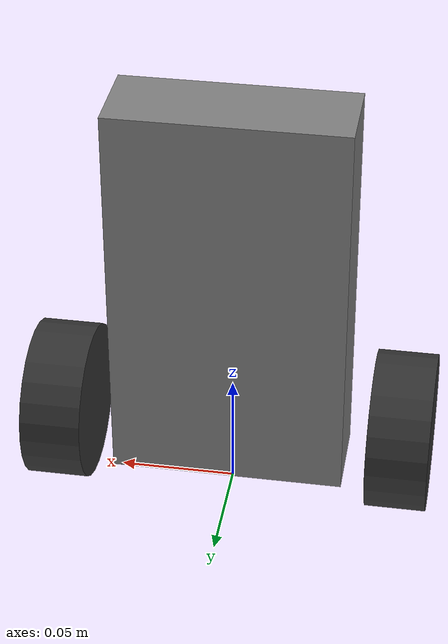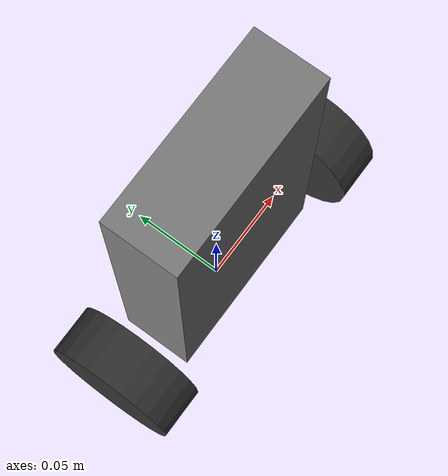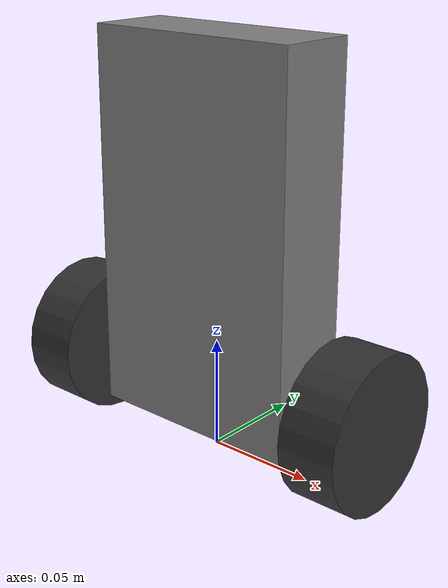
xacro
<robot name="balance_bot" xmlns:xacro="http://www.ros.org/wiki/xacro">
  <xacro:arg name="config_file" default="" />

  <material name="body">  <color rgba="0.5 0.5 0.5 1"/> </material>
  <material name="wheel"> <color rgba="0.2 0.2 0.2 1"/> </material>

  <link name="base_link">
    <visual>
      <geometry><box size="0.1 0.037 0.171"/></geometry>
      <origin rpy="0 0 0" xyz="0 0.0 0.0995"/>
      <material name="body"/>
    </visual>
    <collision>
      <geometry><box size="0.1 0.037 0.171"/></geometry>
      <origin rpy="0 0 0" xyz="0 0.0 0.0995"/>
    </collision>
    <inertial>
      <mass value="0.514"/>
      <!-- ixx/iyy/izz for a uniform solid box: m*(h?+d?)/12 etc.         -->
      <inertia ixx="0.0012568" ixy="0.0" ixz="0.0"
               iyy="0.001311"  iyz="0.0"
               izz="0.000487"/>
      <!-- CoM at geometric center ? matches PyBullet URDF intent          -->
      <origin rpy="0 0 0" xyz="0 0.0 0.0995"/>
    </inertial>
  </link>

  <link name="left_wheel">
    <visual>
      <geometry><cylinder length="0.026" radius="0.034"/></geometry>
      <origin rpy="0 1.5707963 0" xyz="0 0 0"/>
      <material name="wheel"/>
    </visual>
    <collision>
      <geometry><cylinder length="0.026" radius="0.034"/></geometry>
      <origin rpy="0 1.5707963 0" xyz="0 0 0"/>
    </collision>
    <inertial>
      <mass value="0.032"/>
      <inertia ixx="1.3E-05" ixy="0.0" ixz="0.0"
               iyy="1.3E-05" iyz="0.0"
               izz="2.3E-05"/>
      <origin rpy="0 0 0" xyz="0 0 0"/>
    </inertial>
  </link>

  <joint name="left_wheel_joint" type="continuous">
    <parent link="base_link"/>
    <child link="left_wheel"/>
    <axis xyz="-1 0 0"/>
    <!-- velocity=100 rad/s is a generous hardware ceiling (not a control  -->
    <!-- limit); MAX_VEL=50 in the controller is the effective cap.         -->
    <limit effort="25.0" velocity="100.0"/>
    <origin rpy="0 0 0" xyz="-0.074 0.0 0.034"/>
  </joint>

  <link name="right_wheel">
    <visual>
      <geometry><cylinder length="0.026" radius="0.034"/></geometry>
      <origin rpy="0 1.5707963 0" xyz="0 0 0"/>
      <material name="wheel"/>
    </visual>
    <collision>
      <geometry><cylinder length="0.026" radius="0.034"/></geometry>
      <origin rpy="0 1.5707963 0" xyz="0 0 0"/>
    </collision>
    <inertial>
      <mass value="0.032"/>
      <inertia ixx="1.3E-05" ixy="0.0" ixz="0.0"
               iyy="1.3E-05" iyz="0.0"
               izz="2.3E-05"/>
      <origin rpy="0 0 0" xyz="0 0 0"/>
    </inertial>
  </link>

  <joint name="right_wheel_joint" type="continuous">
    <parent link="base_link"/>
    <child link="right_wheel"/>
    <axis xyz="1 0 0"/>
    <limit effort="25.0" velocity="100.0"/>
    <origin rpy="0 0 0" xyz="0.074 0.0 0.034"/>
  </joint>

  <gazebo reference="left_wheel">
    <mu1>5.0</mu1>
    <mu2>5.0</mu2>
    <kp>1e6</kp>
    <kd>10.0</kd>
    <minDepth>0.001</minDepth>
  </gazebo>

  <gazebo reference="right_wheel">
    <mu1>5.0</mu1>
    <mu2>5.0</mu2>
    <kp>1e6</kp>
    <kd>10.0</kd>
    <minDepth>0.001</minDepth>
  </gazebo>

  <link name="imu_link">
    <visual>
      <geometry><box size="0.03 0.03 0.03"/></geometry>
      <origin xyz="0 0 0" rpy="0 0 0"/>
    </visual>
    <collision>
      <geometry><box size="0.05 0.05 0.05"/></geometry>
      <origin xyz="0 0 0" rpy="0 0 0"/>
    </collision>
    <inertial>
      <mass value="0.01"/>
      <origin xyz="0 0 0" rpy="0 0 0"/>
      <inertia ixx="0.0001" iyy="0.0001" izz="0.0001"
               ixy="0.0"   ixz="0.0"   iyz="0.0"/>
    </inertial>
  </link>

  <joint name="imu_joint" type="fixed">
    <parent link="base_link"/>
    <child link="imu_link"/>
    <origin xyz="0 0 0.034" rpy="0 0 0"/>
  </joint>

  <gazebo reference="imu_link">
    <sensor name="imu_sensor" type="imu">
      <always_on>true</always_on>
      <update_rate>200</update_rate>  <!-- raised from 100 -->
      <visualize>true</visualize>
      <pose>0 0 0 0 0 0</pose>
      <imu>
        <angular_velocity>
          <x><noise type="gaussian"><mean>0.0</mean><stddev>0.0002</stddev></noise></x>
          <y><noise type="gaussian"><mean>0.0</mean><stddev>0.0002</stddev></noise></y>
          <z><noise type="gaussian"><mean>0.0</mean><stddev>0.0002</stddev></noise></z>
        </angular_velocity>
        <linear_acceleration>
          <x><noise type="gaussian"><mean>0.0</mean><stddev>0.017</stddev></noise></x>
          <y><noise type="gaussian"><mean>0.0</mean><stddev>0.017</stddev></noise></y>
          <z><noise type="gaussian"><mean>0.0</mean><stddev>0.017</stddev></noise></z>
        </linear_acceleration>
      </imu>
      <plugin name="imu_plugin" filename="libgazebo_ros_imu_sensor.so">
        <bodyName>imu_link</bodyName>
        <updateRateHZ>200.0</updateRateHZ>  <!-- raised from 100 -->
        <gaussianNoise>0.001</gaussianNoise>
        <xyzOffset>0 0 0</xyzOffset>
        <rpyOffset>0 0 0</rpyOffset>
        <frameName>imu_link</frameName>
        <initialOrientationAsReference>false</initialOrientationAsReference>
        <topicName>/imu_plugin/out</topicName>
      </plugin>
    </sensor>
  </gazebo>

  <gazebo>
    <plugin name="gazebo_ros2_control" filename="libgazebo_ros2_control.so">
      <robot_param>robot_description</robot_param>
      <robot_param_node>robot_state_publisher</robot_param_node>
      <parameters>$(arg config_file)</parameters>
    </plugin>
  </gazebo>

                           -->
  <ros2_control name="BalanceBotHardware" type="system">
    <hardware>
      <plugin>gazebo_ros2_control/GazeboSystem</plugin>
    </hardware>

    <joint name="left_wheel_joint">
      <command_interface name="velocity">
        <param name="min">-50.0</param>  <!-- rad/s; matches MAX_VEL in cpp -->
        <param name="max"> 50.0</param>
      </command_interface>
      <state_interface name="position"/>
      <state_interface name="velocity"/>
    </joint>

    <joint name="right_wheel_joint">
      <command_interface name="velocity">
        <param name="min">-50.0</param>
        <param name="max"> 50.0</param>
      </command_interface>
      <state_interface name="position"/>
      <state_interface name="velocity"/>
    </joint>
  </ros2_control>

</robot>
